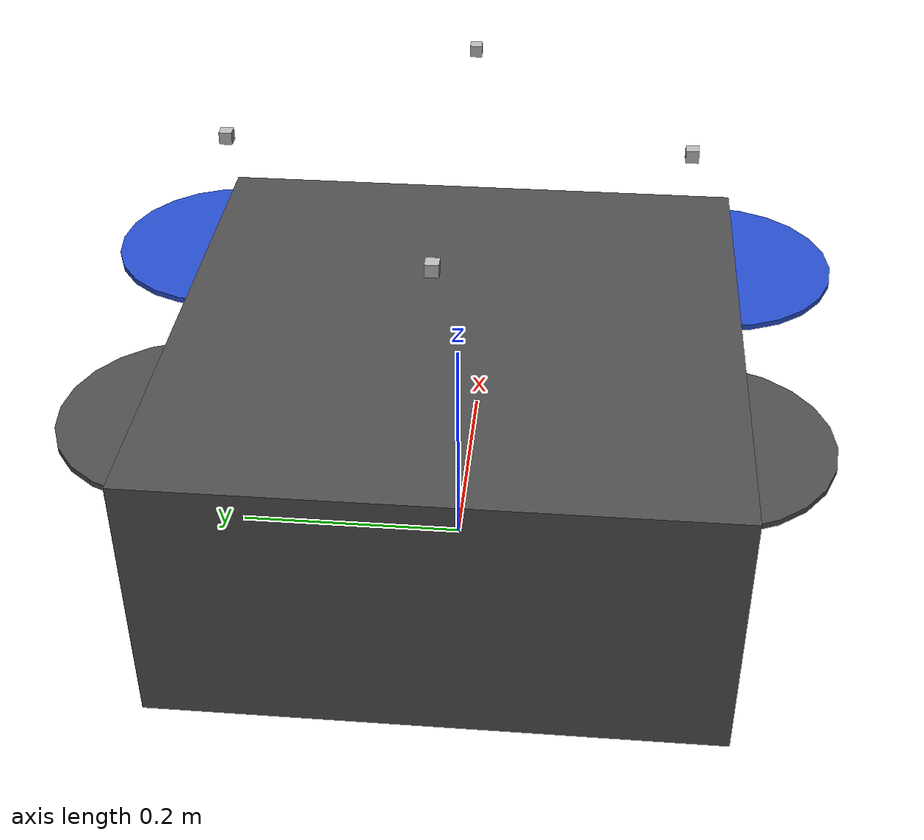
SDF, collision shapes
<?xml version='1.0'?>
<sdf version='1.6'>
  <model name='iris'>
    <pose>0 0 0.194923 0 0 0</pose>
    <link name='base_link'>
      <velocity_decay>
        <linear>0.0</linear>
        <angular>0.0</angular>
      </velocity_decay>
      <inertial>
        <pose>0 0 0 0 0 0</pose>
        <mass>1.5</mass>
        <inertia>
          <ixx>0.008</ixx>
          <ixy>0</ixy>
          <ixz>0</ixz>
          <iyy>0.015</iyy>
          <iyz>0</iyz>
          <izz>0.017</izz>
        </inertia>
      </inertial>
      <collision name='base_link_collision'>
        <pose>0 0 -0.08 0 0 0</pose>
        <geometry>
          <box>
            <size>0.47 0.47 0.23</size>
          </box>
        </geometry>
        <surface>
          <contact>
            <ode>
              <max_vel>100.0</max_vel>
              <min_depth>0.001</min_depth>
            </ode>
          </contact>
          <friction>
            <ode>
              <mu>1.0</mu>
              <mu2>1.0</mu2>
            </ode>
          </friction>
        </surface>
      </collision>
      <visual name='base_link_visual'>
        <geometry>
          <mesh>
            <uri>model://iris_with_standoffs/meshes/iris.dae</uri>
          </mesh>
        </geometry>
        <material>
          <script>
            <name>Gazebo/DarkGrey</name>
          </script>
        </material>
      </visual>

      <visual name='front_left_leg_visual'>
        <pose>0.123 0.22 -0.11 0 0 0</pose>
        <geometry>
          <cylinder>
            <radius>0.005</radius>
            <length>0.17</length>
          </cylinder>
        </geometry>
        <material>
          <script>
            <name>Gazebo/FlatBlack</name>
            <uri>file://media/materials/scripts/gazebo.material</uri>
          </script>
        </material>
      </visual>
      <visual name='front_right_leg_visual'>
        <pose>0.123 -0.22 -0.11 0 0 0</pose>
        <geometry>
          <cylinder>
            <radius>0.005</radius>
            <length>0.17</length>
          </cylinder>
        </geometry>
        <material>
          <script>
            <name>Gazebo/FlatBlack</name>
            <uri>file://media/materials/scripts/gazebo.material</uri>
          </script>
        </material>
      </visual>
      <visual name='rear_left_leg_visual'>
        <pose>-0.140 0.21 -0.11 0 0 0</pose>
        <geometry>
          <cylinder>
            <radius>0.005</radius>
            <length>0.17</length>
          </cylinder>
        </geometry>
        <material>
          <script>
            <name>Gazebo/FlatBlack</name>
            <uri>file://media/materials/scripts/gazebo.material</uri>
          </script>
        </material>
      </visual>
      <visual name='rear_right_leg_visual'>
        <pose>-0.140 -0.21 -0.11 0 0 0</pose>
        <geometry>
          <cylinder>
            <radius>0.005</radius>
            <length>0.17</length>
          </cylinder>
        </geometry>
        <material>
          <script>
            <name>Gazebo/FlatBlack</name>
            <uri>file://media/materials/scripts/gazebo.material</uri>
          </script>
        </material>
      </visual>
    </link>
    <link name='iris/ground_truth/odometry_sensorgt_link'>
      <pose>0 0 0 0 -0 0</pose>
      <inertial>
        <pose>0 0 0 0 -0 0</pose>
        <mass>0.15</mass>
        <inertia>
          <ixx>0.0001</ixx>
          <ixy>0</ixy>
          <ixz>0</ixz>
          <iyy>0.0002</iyy>
          <iyz>0</iyz>
          <izz>0.0002</izz>
        </inertia>
      </inertial>
    </link>
    <joint name='iris/ground_truth/odometry_sensorgt_joint' type='revolute'>
      <child>iris/ground_truth/odometry_sensorgt_link</child>
      <parent>base_link</parent>
      <axis>
        <xyz>0 0 1</xyz>
        <limit>
          <lower>0</lower>
          <upper>0</upper>
          <effort>0</effort>
          <velocity>0</velocity>
        </limit>
        <dynamics>
          <damping>1.0</damping>
        </dynamics>
        <use_parent_model_frame>1</use_parent_model_frame>
      </axis>
      <physics>
        <ode>
          <implicit_spring_damper>1</implicit_spring_damper>
        </ode>
      </physics>
    </joint>
    <link name='iris/imu_link'>
      <inertial>
        <pose>0 0 0 0 0 0</pose>
        <mass>0.15</mass>
        <inertia>
          <ixx>0.00001</ixx>
          <ixy>0</ixy>
          <ixz>0</ixz>
          <iyy>0.00002</iyy>
          <iyz>0</iyz>
          <izz>0.00002</izz>
        </inertia>
      </inertial>
      <sensor name="imu_sensor" type="imu">
        <pose>0 0 0 3.141593 0 0</pose>
        <always_on>1</always_on>
        <update_rate>1000.0</update_rate>
      </sensor>
    </link>
    <joint name='iris/imu_joint' type='revolute'>
      <child>iris/imu_link</child>
      <parent>base_link</parent>
      <axis>
        <xyz>0 0 1</xyz>
        <limit>
          <lower>0</lower>
          <upper>0</upper>
          <effort>0</effort>
          <velocity>0</velocity>
        </limit>
        <dynamics>
          <damping>1.0</damping>
        </dynamics>
        <use_parent_model_frame>1</use_parent_model_frame>
      </axis>
      <physics>
        <ode>
          <implicit_spring_damper>1</implicit_spring_damper>
        </ode>
      </physics>
    </joint>

        <!-- Sonar Sensor -->
    <link name="base_sonar_front">
      <pose>0.18 0 .2 0 0 0</pose>
      <collision name="sonar_collision">
        <geometry>
          <box>
            <size>.01 .01 .01</size>
          </box>
        </geometry>
      </collision>

      <visual name="visual">
        <geometry>
          <box>
            <size>0.01 0.01 0.01</size>
          </box>
        </geometry>
      </visual>
      <inertial>
        <mass>0.1</mass>
        <inertia>
          <ixx>0.001</ixx>
          <ixy>0</ixy>
          <ixz>0</ixz>
          <iyy>0.001</iyy>
          <iyz>0</iyz>
          <izz>0.001</izz>
        </inertia>
      </inertial>
      <sensor type="ray" name="sonar_sensor">

        <visualize>true</visualize>
        <update_rate>10</update_rate>
        <ray>
            <scan>
              <horizontal>
                  <samples>10</samples>
                  <resolution>1</resolution>
                  <min_angle>-0.14835</min_angle>
                  <max_angle>0.14835</max_angle>
              </horizontal>
              <vertical>
                  <samples>10</samples>
                  <resolution>1</resolution>
                  <min_angle>-0.14835</min_angle>
                  <max_angle>0.14835</max_angle>
              </vertical>
            </scan>
            <range>
              <min>0.06</min>
              <max>7</max>
              <resolution>0.02</resolution>
            </range>
        </ray>
        <plugin filename="libgazebo_ros_range_iq.so" name="gazebo_ros_range2">
            <gaussianNoise>0.005</gaussianNoise>
            <alwaysOn>true</alwaysOn>
            <updateRate>50</updateRate>
            <topicName>/mavros/distance_sensor/front</topicName>
            <frameName>base_sonar_front</frameName>
            <radiation>INFRARED</radiation>
            <fov>0.2967</fov>
        </plugin>
      </sensor>
    </link>

    <joint type="fixed" name="base_sonar_joint">
      <pose>0 0 0 0 0 0</pose>
      <parent>iris::base_link</parent>
      <child>base_sonar_front</child>
      <axis>
        <limit>
          <lower>0</lower>
          <upper>0</upper>
        </limit>
        <xyz>0 0 1</xyz>
        <use_parent_model_frame>true</use_parent_model_frame>
      </axis>
    </joint>

    <!-- Sonar Sensor -->
    <link name="base_sonar_left">
      <pose>0 0.18 .2 0 0 1.57</pose>
      <collision name="sonar_collision">
        <geometry>
          <box>
            <size>.01 .01 .01</size>
          </box>
        </geometry>
      </collision>

      <visual name="visual">
        <geometry>
          <box>
            <size>0.01 0.01 0.01</size>
          </box>
        </geometry>
      </visual>
      <inertial>
        <mass>0.1</mass>
        <inertia>
          <ixx>0.001</ixx>
          <ixy>0</ixy>
          <ixz>0</ixz>
          <iyy>0.001</iyy>
          <iyz>0</iyz>
          <izz>0.001</izz>
        </inertia>
      </inertial>
      <sensor type="ray" name="sonar_sensor">

        <visualize>true</visualize>
        <update_rate>10</update_rate>
        <ray>
            <scan>
              <horizontal>
                  <samples>10</samples>
                  <resolution>1</resolution>
                  <min_angle>-0.14835</min_angle>
                  <max_angle>0.14835</max_angle>
              </horizontal>
              <vertical>
                  <samples>10</samples>
                  <resolution>1</resolution>
                  <min_angle>-0.14835</min_angle>
                  <max_angle>0.14835</max_angle>
              </vertical>
            </scan>
            <range>
              <min>0.06</min>
              <max>7</max>
              <resolution>0.02</resolution>
            </range>
        </ray>
        <plugin filename="libgazebo_ros_range_iq.so" name="gazebo_ros_range2">
            <gaussianNoise>0.005</gaussianNoise>
            <alwaysOn>true</alwaysOn>
            <updateRate>50</updateRate>
            <topicName>/mavros/distance_sensor/left</topicName>
            <frameName>base_sonar_left</frameName>
            <radiation>INFRARED</radiation>
            <fov>0.2967</fov>
        </plugin>
      </sensor>
    </link>

    <joint type="fixed" name="base_sonar_joint_left">
      <pose>0 0 0 0 0 0</pose>
      <parent>iris::base_link</parent>
      <child>base_sonar_left</child>
      <axis>
        <limit>
          <lower>0</lower>
          <upper>0</upper>
        </limit>
        <xyz>0 0 1</xyz>
        <use_parent_model_frame>true</use_parent_model_frame>
      </axis>
    </joint>

    <!-- Sonar Sensor -->
    <link name="base_sonar_right">
      <pose>0 -0.18 .2 0 0 -1.57</pose>
      <collision name="sonar_collision">
        <geometry>
          <box>
            <size>.01 .01 .01</size>
          </box>
        </geometry>
      </collision>

      <visual name="visual">
        <geometry>
          <box>
            <size>0.01 0.01 0.01</size>
          </box>
        </geometry>
      </visual>
      <inertial>
        <mass>0.1</mass>
        <inertia>
          <ixx>0.001</ixx>
          <ixy>0</ixy>
          <ixz>0</ixz>
          <iyy>0.001</iyy>
          <iyz>0</iyz>
          <izz>0.001</izz>
        </inertia>
      </inertial>
      <sensor type="ray" name="sonar_sensor">

        <visualize>true</visualize>
        <update_rate>10</update_rate>
        <ray>
            <scan>
              <horizontal>
                  <samples>10</samples>
                  <resolution>1</resolution>
                  <min_angle>-0.14835</min_angle>
                  <max_angle>0.14835</max_angle>
              </horizontal>
              <vertical>
                  <samples>10</samples>
                  <resolution>1</resolution>
                  <min_angle>-0.14835</min_angle>
                  <max_angle>0.14835</max_angle>
              </vertical>
            </scan>
            <range>
              <min>0.06</min>
              <max>7</max>
              <resolution>0.02</resolution>
            </range>
        </ray>
        <plugin filename="libgazebo_ros_range_iq.so" name="gazebo_ros_range2">
            <gaussianNoise>0.005</gaussianNoise>
            <alwaysOn>true</alwaysOn>
            <updateRate>50</updateRate>
            <topicName>/mavros/distance_sensor/right</topicName>
            <frameName>base_sonar_right</frameName>
            <radiation>INFRARED</radiation>
            <fov>0.2967</fov>
        </plugin>
      </sensor>
    </link>

    <joint type="fixed" name="base_sonar_joint_right">
      <pose>0 0 0 0 0 0</pose>
      <parent>iris::base_link</parent>
      <child>base_sonar_right</child>
      <axis>
        <limit>
          <lower>0</lower>
          <upper>0</upper>
        </limit>
        <xyz>0 0 1</xyz>
        <use_parent_model_frame>true</use_parent_model_frame>
      </axis>
    </joint>

    <!-- Sonar Sensor -->
    <link name="base_sonar_back">
      <pose>-0.18 0 0.2 0 0 3.14</pose>
      <collision name="sonar_collision">
        <geometry>
          <box>
            <size>.01 .01 .01</size>
          </box>
        </geometry>
      </collision>

      <visual name="visual">
        <geometry>
          <box>
            <size>0.01 0.01 0.01</size>
          </box>
        </geometry>
      </visual>
      <inertial>
        <mass>0.1</mass>
        <inertia>
          <ixx>0.001</ixx>
          <ixy>0</ixy>
          <ixz>0</ixz>
          <iyy>0.001</iyy>
          <iyz>0</iyz>
          <izz>0.001</izz>
        </inertia>
      </inertial>
      <sensor type="ray" name="sonar_sensor">

        <visualize>true</visualize>
        <update_rate>10</update_rate>
        <ray>
            <scan>
              <horizontal>
                  <samples>10</samples>
                  <resolution>1</resolution>
                  <min_angle>-0.14835</min_angle>
                  <max_angle>0.14835</max_angle>
              </horizontal>
              <vertical>
                  <samples>10</samples>
                  <resolution>1</resolution>
                  <min_angle>-0.14835</min_angle>
                  <max_angle>0.14835</max_angle>
              </vertical>
            </scan>
            <range>
              <min>0.06</min>
              <max>7</max>
              <resolution>0.02</resolution>
            </range>
        </ray>
        <plugin filename="libgazebo_ros_range_iq.so" name="gazebo_ros_range2">
            <gaussianNoise>0.005</gaussianNoise>
            <alwaysOn>true</alwaysOn>
            <updateRate>50</updateRate>
            <topicName>/mavros/distance_sensor/back</topicName>
            <frameName>base_sonar_back</frameName>
            <radiation>INFRARED</radiation>
            <fov>0.2967</fov>
        </plugin>
      </sensor>
    </link>

    <joint type="fixed" name="base_sonar_joint_back">
      <pose>0 0 0 0 0 0</pose>
      <parent>iris::base_link</parent>
      <child>base_sonar_back</child>
      <axis>
        <limit>
          <lower>0</lower>
          <upper>0</upper>
        </limit>
        <xyz>0 0 1</xyz>
        <use_parent_model_frame>true</use_parent_model_frame>
      </axis>
    </joint>

    <link name='rotor_0'>
      <pose>0.13 -0.22 0.023 0 -0 0</pose>
      <inertial>
        <pose>0 0 0 0 -0 0</pose>
        <mass>0.025</mass>
        <inertia>
          <ixx>9.75e-06</ixx>
          <ixy>0</ixy>
          <ixz>0</ixz>
          <iyy>0.000166704</iyy>
          <iyz>0</iyz>
          <izz>0.000167604</izz>
        </inertia>
      </inertial>
      <collision name='rotor_0_collision'>
        <pose>0 0 0 0 -0 0</pose>
        <geometry>
          <cylinder>
            <length>0.005</length>
            <radius>0.1</radius>
          </cylinder>
        </geometry>
        <surface>
          <contact>
            <ode/>
          </contact>
          <friction>
            <ode/>
          </friction>
        </surface>
      </collision>
      <visual name='rotor_0_visual'>
        <pose>0 0 0 0 -0 0</pose>
        <geometry>
          <mesh>
            <scale>1 1 1</scale>
            <uri>model://iris_with_standoffs/meshes/iris_prop_ccw.dae</uri>
          </mesh>
        </geometry>
        <material>
          <script>
            <name>Gazebo/Blue</name>
            <uri>__default__</uri>
          </script>
        </material>
      </visual>
      <gravity>1</gravity>
      <velocity_decay/>
      <self_collide>0</self_collide>
    </link>
    <joint name='rotor_0_joint' type='revolute'>
      <child>rotor_0</child>
      <parent>base_link</parent>
      <axis>
        <xyz>0 0 1</xyz>
        <limit>
          <lower>-1e+16</lower>
          <upper>1e+16</upper>
        </limit>
        <dynamics>
          <damping>0.004</damping>
        </dynamics>
        <use_parent_model_frame>1</use_parent_model_frame>
      </axis>
      <physics>
        <ode>
          <implicit_spring_damper>1</implicit_spring_damper>
        </ode>
      </physics>
    </joint>
    <link name='rotor_1'>
      <pose>-0.13 0.2 0.023 0 -0 0</pose>
      <inertial>
        <pose>0 0 0 0 -0 0</pose>
        <mass>0.025</mass>
        <inertia>
          <ixx>9.75e-06</ixx>
          <ixy>0</ixy>
          <ixz>0</ixz>
          <iyy>0.000166704</iyy>
          <iyz>0</iyz>
          <izz>0.000167604</izz>
        </inertia>
      </inertial>
      <collision name='rotor_1_collision'>
        <pose>0 0 0 0 -0 0</pose>
        <geometry>
          <cylinder>
            <length>0.005</length>
            <radius>0.1</radius>
          </cylinder>
        </geometry>
        <surface>
          <contact>
            <ode/>
          </contact>
          <friction>
            <ode/>
          </friction>
        </surface>
      </collision>
      <visual name='rotor_1_visual'>
        <pose>0 0 0 0 -0 0</pose>
        <geometry>
          <mesh>
            <scale>1 1 1</scale>
            <uri>model://iris_with_standoffs/meshes/iris_prop_ccw.dae</uri>
          </mesh>
        </geometry>
        <material>
          <script>
            <name>Gazebo/DarkGrey</name>
            <uri>__default__</uri>
          </script>
        </material>
      </visual>
      <gravity>1</gravity>
      <velocity_decay/>
      <self_collide>0</self_collide>
    </link>
    <joint name='rotor_1_joint' type='revolute'>
      <child>rotor_1</child>
      <parent>base_link</parent>
      <axis>
        <xyz>0 0 1</xyz>
        <limit>
          <lower>-1e+16</lower>
          <upper>1e+16</upper>
        </limit>
        <dynamics>
          <damping>0.004</damping>
        </dynamics>
        <use_parent_model_frame>1</use_parent_model_frame>
      </axis>
      <physics>
        <ode>
          <implicit_spring_damper>1</implicit_spring_damper>
        </ode>
      </physics>
    </joint>
    <link name='rotor_2'>
      <pose>0.13 0.22 0.023 0 -0 0</pose>
      <inertial>
        <pose>0 0 0 0 -0 0</pose>
        <mass>0.025</mass>
        <inertia>
          <ixx>9.75e-06</ixx>
          <ixy>0</ixy>
          <ixz>0</ixz>
          <iyy>0.000166704</iyy>
          <iyz>0</iyz>
          <izz>0.000167604</izz>
        </inertia>
      </inertial>
      <collision name='rotor_2_collision'>
        <pose>0 0 0 0 -0 0</pose>
        <geometry>
          <cylinder>
            <length>0.005</length>
            <radius>0.1</radius>
          </cylinder>
        </geometry>
        <surface>
          <contact>
            <ode/>
          </contact>
          <friction>
            <ode/>
          </friction>
        </surface>
      </collision>
      <visual name='rotor_2_visual'>
        <pose>0 0 0 0 -0 0</pose>
        <geometry>
          <mesh>
            <scale>1 1 1</scale>
            <uri>model://iris_with_standoffs/meshes/iris_prop_cw.dae</uri>
          </mesh>
        </geometry>
        <material>
          <script>
            <name>Gazebo/Blue</name>
            <uri>__default__</uri>
          </script>
        </material>
      </visual>
      <gravity>1</gravity>
      <velocity_decay/>
      <self_collide>0</self_collide>
    </link>
    <joint name='rotor_2_joint' type='revolute'>
      <child>rotor_2</child>
      <parent>base_link</parent>
      <axis>
        <xyz>0 0 1</xyz>
        <limit>
          <lower>-1e+16</lower>
          <upper>1e+16</upper>
        </limit>
        <dynamics>
          <damping>0.004</damping>
        </dynamics>
        <use_parent_model_frame>1</use_parent_model_frame>
      </axis>
      <physics>
        <ode>
          <implicit_spring_damper>1</implicit_spring_damper>
        </ode>
      </physics>
    </joint>
    <link name='rotor_3'>
      <pose>-0.13 -0.2 0.023 0 -0 0</pose>
      <inertial>
        <pose>0 0 0 0 -0 0</pose>
        <mass>0.025</mass>
        <inertia>
          <ixx>9.75e-06</ixx>
          <ixy>0</ixy>
          <ixz>0</ixz>
          <iyy>0.000166704</iyy>
          <iyz>0</iyz>
          <izz>0.000167604</izz>
        </inertia>
      </inertial>
      <collision name='rotor_3_collision'>
        <pose>0 0 0 0 -0 0</pose>
        <geometry>
          <cylinder>
            <length>0.005</length>
            <radius>0.1</radius>
          </cylinder>
        </geometry>
        <surface>
          <contact>
            <ode/>
          </contact>
          <friction>
            <ode/>
          </friction>
        </surface>
      </collision>
      <visual name='rotor_3_visual'>
        <pose>0 0 0 0 -0 0</pose>
        <geometry>
          <mesh>
            <scale>1 1 1</scale>
            <uri>model://iris_with_standoffs/meshes/iris_prop_cw.dae</uri>
          </mesh>
        </geometry>
        <material>
          <script>
            <name>Gazebo/DarkGrey</name>
            <uri>__default__</uri>
          </script>
        </material>
      </visual>
      <gravity>1</gravity>
      <velocity_decay/>
      <self_collide>0</self_collide>
    </link>
    <joint name='rotor_3_joint' type='revolute'>
      <child>rotor_3</child>
      <parent>base_link</parent>
      <axis>
        <xyz>0 0 1</xyz>
        <limit>
          <lower>-1e+16</lower>
          <upper>1e+16</upper>
        </limit>
        <dynamics>
          <damping>0.004</damping>
        </dynamics>
        <use_parent_model_frame>1</use_parent_model_frame>
      </axis>
      <physics>
        <ode>
          <implicit_spring_damper>1</implicit_spring_damper>
        </ode>
      </physics>
    </joint>
    <static>0</static>
  </model>
</sdf>
